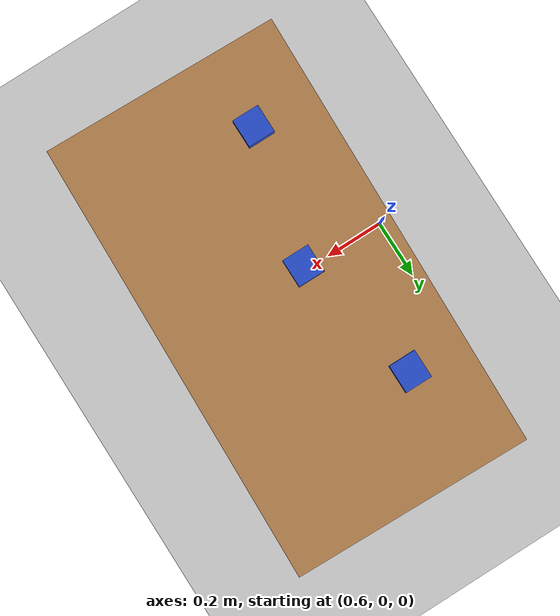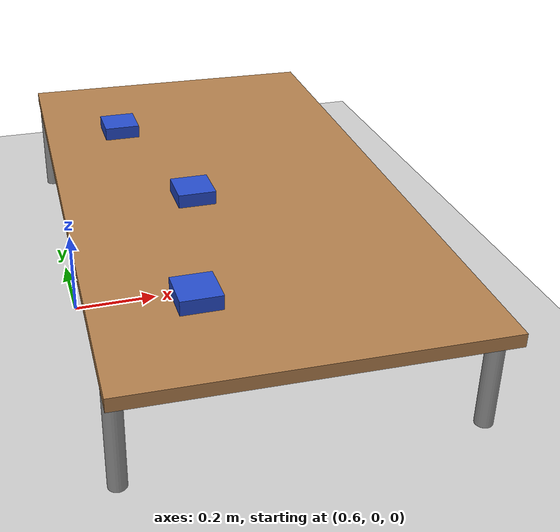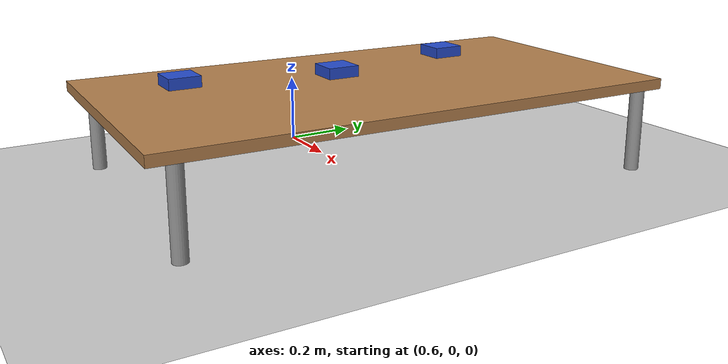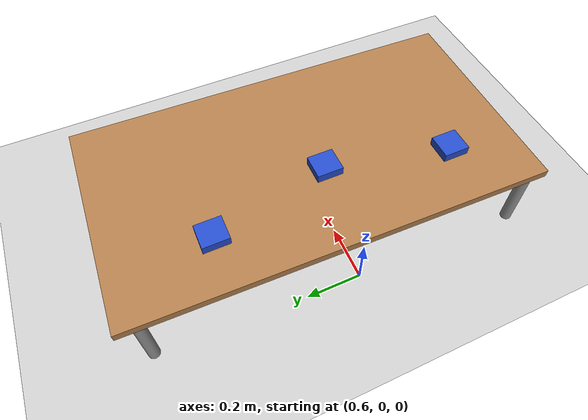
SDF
<sdf version="1.7">
 <world name="default">
  <light name="sun" type="directional">
   <pose>0 0 10 0 -0 0</pose>
   <diffuse>0.8 0.8 0.8 1</diffuse>
   <specular>0.2 0.2 0.2 1</specular>
   <attenuation>
    <range>1000</range>
    <constant>0.9</constant>
    <linear>0.01</linear>
    <quadratic>0.001</quadratic>
   </attenuation>
   <direction>-0.5 0.1 -0.9</direction>
   <spot><inner_angle>0</inner_angle><outer_angle>0</outer_angle><falloff>0</falloff></spot>
  </light>
  <model name="ground_plane">
   <static>1</static>
   <link name="link">
    <collision name="collision">
     <geometry><plane><normal>0 0 1</normal><size>100 100</size></plane></geometry>
     <surface>
      <contact><collide_bitmask>65535</collide_bitmask></contact>
      <friction><ode><mu>100</mu><mu2>50</mu2></ode></friction>
     </surface>
    </collision>
    <visual name="visual">
     <cast_shadows>0</cast_shadows>
     <geometry><plane><normal>0 0 1</normal><size>100 100</size></plane></geometry>
     <material>
      <script><uri>file://media/materials/scripts/gazebo.material</uri><name>Gazebo/Grey</name></script>
     </material>
    </visual>
   </link>
  </model>
  <gravity>0 0 -9.8</gravity>
  <magnetic_field>6e-06 2.3e-05 -4.2e-05</magnetic_field>
  <atmosphere type="adiabatic"/>
  <physics type="ode">
   <max_step_size>0.001</max_step_size>
   <real_time_factor>1</real_time_factor>
   <real_time_update_rate>1000</real_time_update_rate>
  </physics>
  <scene><ambient>0.4 0.4 0.4 1</ambient><background>0.7 0.7 0.7 1</background><shadows>1</shadows></scene>
  <spherical_coordinates>
   <surface_model>EARTH_WGS84</surface_model>
   <latitude_deg>0</latitude_deg>
   <longitude_deg>0</longitude_deg>
   <elevation>0</elevation>
   <heading_deg>0</heading_deg>
  </spherical_coordinates>
  <model name="table">
   <static>1</static>
   <link name="link">
    <collision name="surface">
     <pose>0 0 0.25 0 -0 0</pose>
     <geometry><box><size>1.5 0.8 0.03</size></box></geometry>
     <surface><friction><ode><mu>0.6</mu><mu2>0.6</mu2></ode></friction></surface>
    </collision>
    <visual name="visual1">
     <pose>0 0 0.25 0 -0 0</pose>
     <geometry><box><size>1.5 0.8 0.03</size></box></geometry>
     <material>
      <script><uri>file://media/materials/scripts/gazebo.material</uri><name>Gazebo/Wood</name></script>
     </material>
    </visual>
    <collision name="front_left_leg">
     <pose>0.68 0.38 0.125 0 -0 0</pose>
     <geometry><cylinder><radius>0.02</radius><length>0.25</length></cylinder></geometry>
    </collision>
    <visual name="front_left_leg">
     <pose>0.68 0.38 0.125 0 -0 0</pose>
     <geometry><cylinder><radius>0.02</radius><length>0.25</length></cylinder></geometry>
     <material>
      <script><uri>file://media/materials/scripts/gazebo.material</uri><name>Gazebo/Grey</name></script>
     </material>
    </visual>
    <collision name="front_right_leg">
     <pose>0.68 -0.38 0.125 0 -0 0</pose>
     <geometry><cylinder><radius>0.02</radius><length>0.25</length></cylinder></geometry>
    </collision>
    <visual name="front_right_leg">
     <pose>0.68 -0.38 0.125 0 -0 0</pose>
     <geometry><cylinder><radius>0.02</radius><length>0.25</length></cylinder></geometry>
     <material>
      <script><uri>file://media/materials/scripts/gazebo.material</uri><name>Gazebo/Grey</name></script>
     </material>
    </visual>
    <collision name="back_right_leg">
     <pose>-0.68 -0.38 0.125 0 -0 0</pose>
     <geometry><cylinder><radius>0.02</radius><length>0.25</length></cylinder></geometry>
    </collision>
    <visual name="back_right_leg">
     <pose>-0.68 -0.38 0.125 0 -0 0</pose>
     <geometry><cylinder><radius>0.02</radius><length>0.25</length></cylinder></geometry>
     <material>
      <script><uri>file://media/materials/scripts/gazebo.material</uri><name>Gazebo/Grey</name></script>
     </material>
    </visual>
    <collision name="back_left_leg">
     <pose>-0.68 0.38 0.125 0 -0 0</pose>
     <geometry><cylinder><radius>0.02</radius><length>0.25</length></cylinder></geometry>
    </collision>
    <visual name="back_left_leg">
     <pose>-0.68 0.38 0.125 0 -0 0</pose>
     <geometry><cylinder><radius>0.02</radius><length>0.25</length></cylinder></geometry>
     <material>
      <script><uri>file://media/materials/scripts/gazebo.material</uri><name>Gazebo/Grey</name></script>
     </material>
    </visual>
   </link>
   <pose>0.99266 0.042187 0 0 0 -1.59661</pose>
  </model>
  <model name="unit_box">
   <pose>0.9 0 0.281312 0 -1e-06 2.1e-05</pose>
   <link name="link">
    <inertial>
     <mass>1</mass>
     <inertia>
      <ixx>0.166667</ixx>
      <ixy>0</ixy>
      <ixz>0</ixz>
      <iyy>0.166667</iyy>
      <iyz>0</iyz>
      <izz>0.166667</izz>
     </inertia>
    </inertial>
    <collision name="collision">
     <geometry><box><size>0.090341 0.094317 0.032625</size></box></geometry>
     <max_contacts>100</max_contacts>
    </collision>
    <visual name="visual">
     <geometry><box><size>0.090341 0.094317 0.032625</size></box></geometry>
     <material>
      <script><name>Gazebo/Blue</name><uri>file://media/materials/scripts/gazebo.material</uri></script>
     </material>
    </visual>
   </link>
  </model>
  <model name="unit_box_clone">
   <pose>0.8 0.44 0.281312 2e-06 -1e-06 1.8e-05</pose>
   <link name="link">
    <inertial>
     <mass>1</mass>
     <inertia>
      <ixx>0.166667</ixx>
      <ixy>0</ixy>
      <ixz>0</ixz>
      <iyy>0.166667</iyy>
      <iyz>0</iyz>
      <izz>0.166667</izz>
     </inertia>
    </inertial>
    <collision name="collision">
     <geometry><box><size>0.090341 0.094317 0.032625</size></box></geometry>
     <max_contacts>100</max_contacts>
    </collision>
    <visual name="visual">
     <geometry><box><size>0.090341 0.094317 0.032625</size></box></geometry>
     <material>
      <script><name>Gazebo/Blue</name><uri>file://media/materials/scripts/gazebo.material</uri></script>
     </material>
    </visual>
   </link>
  </model>
  <model name="unit_box_clone_0">
   <pose>0.8 -0.44 0.281313 -0 -4e-06 1.5e-05</pose>
   <link name="link">
    <inertial>
     <mass>1</mass>
     <inertia>
      <ixx>0.166667</ixx>
      <ixy>0</ixy>
      <ixz>0</ixz>
      <iyy>0.166667</iyy>
      <iyz>0</iyz>
      <izz>0.166667</izz>
     </inertia>
    </inertial>
    <collision name="collision">
     <geometry><box><size>0.090341 0.094317 0.032625</size></box></geometry>
     <max_contacts>100</max_contacts>
    </collision>
    <visual name="visual">
     <geometry><box><size>0.090341 0.094317 0.032625</size></box></geometry>
     <material>
      <script><name>Gazebo/Blue</name><uri>file://media/materials/scripts/gazebo.material</uri></script>
     </material>
    </visual>
   </link>
  </model>
 </world>
</sdf>
